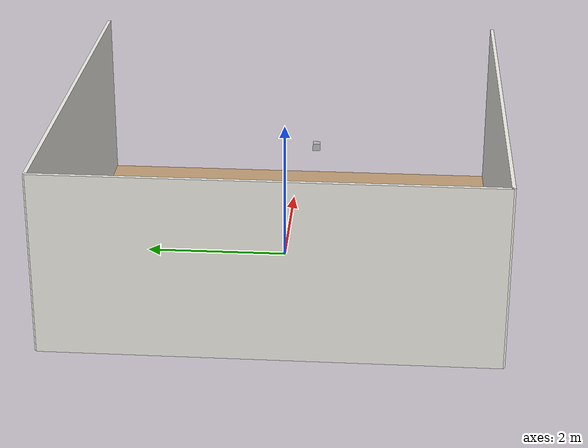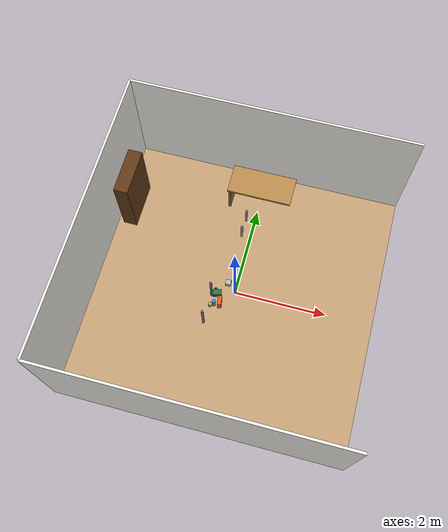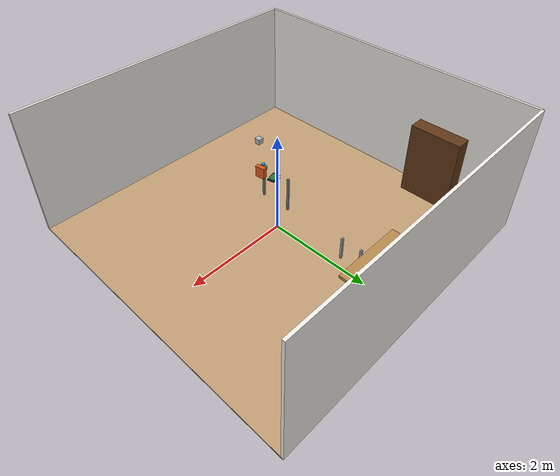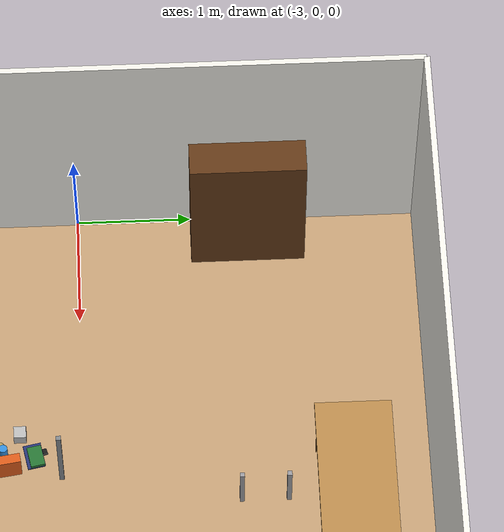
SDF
<sdf version="1.10">
 <world name="bps_room">
  <model name="floor">
   <static>true</static>
   <link name="link">
    <collision name="collision"><geometry><box><size>6 6 0.02</size></box></geometry></collision>
    <visual name="visual">
     <geometry><box><size>6 6 0.02</size></box></geometry>
     <material>
      <ambient>0.75999999 0.620000005 0.460000008 1</ambient>
      <diffuse>0.75999999 0.620000005 0.460000008 1</diffuse>
     </material>
    </visual>
    <inertial>
     <mass>1</mass>
     <inertia><ixx>1</ixx><ixy>0</ixy><ixz>0</ixz><iyy>1</iyy><iyz>0</iyz><izz>1</izz></inertia>
    </inertial>
   </link>
  </model>
  <model name="wall_north">
   <static>true</static>
   <pose>0 3 1.25 0 0 0</pose>
   <link name="link">
    <collision name="collision">
     <geometry><box><size>6 0.050000000000000003 2.5</size></box></geometry>
    </collision>
    <visual name="visual">
     <geometry><box><size>6 0.050000000000000003 2.5</size></box></geometry>
     <material>
      <ambient>0.949999988 0.939999998 0.910000026 1</ambient>
      <diffuse>0.949999988 0.939999998 0.910000026 1</diffuse>
     </material>
    </visual>
    <inertial>
     <mass>1</mass>
     <inertia><ixx>1</ixx><ixy>0</ixy><ixz>0</ixz><iyy>1</iyy><iyz>0</iyz><izz>1</izz></inertia>
    </inertial>
   </link>
  </model>
  <model name="wall_south">
   <static>true</static>
   <pose>0 -3 1.25 0 0 0</pose>
   <link name="link">
    <collision name="collision">
     <geometry><box><size>6 0.050000000000000003 2.5</size></box></geometry>
    </collision>
    <visual name="visual">
     <geometry><box><size>6 0.050000000000000003 2.5</size></box></geometry>
     <material>
      <ambient>0.949999988 0.939999998 0.910000026 1</ambient>
      <diffuse>0.949999988 0.939999998 0.910000026 1</diffuse>
     </material>
    </visual>
    <inertial>
     <mass>1</mass>
     <inertia><ixx>1</ixx><ixy>0</ixy><ixz>0</ixz><iyy>1</iyy><iyz>0</iyz><izz>1</izz></inertia>
    </inertial>
   </link>
  </model>
  <model name="wall_west">
   <static>true</static>
   <pose>-3 0 1.25 0 0 0</pose>
   <link name="link">
    <collision name="collision">
     <geometry><box><size>0.050000000000000003 6 2.5</size></box></geometry>
    </collision>
    <visual name="visual">
     <geometry><box><size>0.050000000000000003 6 2.5</size></box></geometry>
     <material>
      <ambient>0.930000007 0.920000017 0.889999986 1</ambient>
      <diffuse>0.930000007 0.920000017 0.889999986 1</diffuse>
     </material>
    </visual>
    <inertial>
     <mass>1</mass>
     <inertia><ixx>1</ixx><ixy>0</ixy><ixz>0</ixz><iyy>1</iyy><iyz>0</iyz><izz>1</izz></inertia>
    </inertial>
   </link>
  </model>
  <model name="bookshelf_body">
   <static>true</static>
   <pose>-2.7000000000000002 1.5 0.75 0 0 0</pose>
   <link name="link">
    <collision name="collision"><geometry><box><size>0.29999999999999999 1 1.5</size></box></geometry></collision>
    <visual name="visual">
     <geometry><box><size>0.29999999999999999 1 1.5</size></box></geometry>
     <material>
      <ambient>0.379999995 0.219999999 0.0900000036 1</ambient>
      <diffuse>0.379999995 0.219999999 0.0900000036 1</diffuse>
     </material>
    </visual>
    <inertial>
     <mass>1</mass>
     <inertia><ixx>1</ixx><ixy>0</ixy><ixz>0</ixz><iyy>1</iyy><iyz>0</iyz><izz>1</izz></inertia>
    </inertial>
   </link>
  </model>
  <model name="shelf_1">
   <static>true</static>
   <pose>-2.7000000000000002 1.5 0.40000000000000002 0 0 0</pose>
   <link name="link">
    <collision name="collision">
     <geometry><box><size>0.28000000000000003 0.94999999999999996 0.02</size></box></geometry>
    </collision>
    <visual name="visual">
     <geometry><box><size>0.28000000000000003 0.94999999999999996 0.02</size></box></geometry>
     <material>
      <ambient>0.5 0.319999993 0.140000001 1</ambient>
      <diffuse>0.5 0.319999993 0.140000001 1</diffuse>
     </material>
    </visual>
    <inertial>
     <mass>1</mass>
     <inertia><ixx>1</ixx><ixy>0</ixy><ixz>0</ixz><iyy>1</iyy><iyz>0</iyz><izz>1</izz></inertia>
    </inertial>
   </link>
  </model>
  <model name="shelf_2">
   <static>true</static>
   <pose>-2.7000000000000002 1.5 0.84999999999999998 0 0 0</pose>
   <link name="link">
    <collision name="collision">
     <geometry><box><size>0.28000000000000003 0.94999999999999996 0.02</size></box></geometry>
    </collision>
    <visual name="visual">
     <geometry><box><size>0.28000000000000003 0.94999999999999996 0.02</size></box></geometry>
     <material>
      <ambient>0.5 0.319999993 0.140000001 1</ambient>
      <diffuse>0.5 0.319999993 0.140000001 1</diffuse>
     </material>
    </visual>
    <inertial>
     <mass>1</mass>
     <inertia><ixx>1</ixx><ixy>0</ixy><ixz>0</ixz><iyy>1</iyy><iyz>0</iyz><izz>1</izz></inertia>
    </inertial>
   </link>
  </model>
  <model name="shelf_3">
   <static>true</static>
   <pose>-2.7000000000000002 1.5 1.25 0 0 0</pose>
   <link name="link">
    <collision name="collision">
     <geometry><box><size>0.28000000000000003 0.94999999999999996 0.02</size></box></geometry>
    </collision>
    <visual name="visual">
     <geometry><box><size>0.28000000000000003 0.94999999999999996 0.02</size></box></geometry>
     <material>
      <ambient>0.5 0.319999993 0.140000001 1</ambient>
      <diffuse>0.5 0.319999993 0.140000001 1</diffuse>
     </material>
    </visual>
    <inertial>
     <mass>1</mass>
     <inertia><ixx>1</ixx><ixy>0</ixy><ixz>0</ixz><iyy>1</iyy><iyz>0</iyz><izz>1</izz></inertia>
    </inertial>
   </link>
  </model>
  <model name="books_row1">
   <static>true</static>
   <pose>-2.6200000000000001 1.5 0.62 0 0 0</pose>
   <link name="link">
    <visual name="visual">
     <geometry><box><size>0.040000000000000001 0.80000000000000004 0.20000000000000001</size></box></geometry>
     <material>
      <ambient>0.779999971 0.180000007 0.180000007 1</ambient>
      <diffuse>0.779999971 0.180000007 0.180000007 1</diffuse>
     </material>
    </visual>
    <inertial>
     <mass>1</mass>
     <inertia><ixx>1</ixx><ixy>0</ixy><ixz>0</ixz><iyy>1</iyy><iyz>0</iyz><izz>1</izz></inertia>
    </inertial>
   </link>
  </model>
  <model name="books_row2">
   <static>true</static>
   <pose>-2.6200000000000001 1.5 1.0600000000000001 0 0 0</pose>
   <link name="link">
    <visual name="visual">
     <geometry><box><size>0.040000000000000001 0.69999999999999996 0.17999999999999999</size></box></geometry>
     <material>
      <ambient>0.180000007 0.319999993 0.720000029 1</ambient>
      <diffuse>0.180000007 0.319999993 0.720000029 1</diffuse>
     </material>
    </visual>
    <inertial>
     <mass>1</mass>
     <inertia><ixx>1</ixx><ixy>0</ixy><ixz>0</ixz><iyy>1</iyy><iyz>0</iyz><izz>1</izz></inertia>
    </inertial>
   </link>
  </model>
  <model name="desk">
   <static>true</static>
   <pose>0 2.2999999999999998 0.75 0 0 0</pose>
   <link name="link">
    <collision name="collision">
     <geometry><box><size>1.3999999999999999 0.65000000000000002 0.050000000000000003</size></box></geometry>
    </collision>
    <visual name="visual">
     <geometry><box><size>1.3999999999999999 0.65000000000000002 0.050000000000000003</size></box></geometry>
     <material>
      <ambient>0.720000029 0.540000021 0.300000012 1</ambient>
      <diffuse>0.720000029 0.540000021 0.300000012 1</diffuse>
     </material>
    </visual>
    <inertial>
     <mass>1</mass>
     <inertia><ixx>1</ixx><ixy>0</ixy><ixz>0</ixz><iyy>1</iyy><iyz>0</iyz><izz>1</izz></inertia>
    </inertial>
   </link>
  </model>
  <model name="desk_leg_left">
   <static>true</static>
   <pose>-0.65000000000000002 2.2999999999999998 0.375 0 0 0</pose>
   <link name="link">
    <collision name="collision">
     <geometry><box><size>0.050000000000000003 0.59999999999999998 0.75</size></box></geometry>
    </collision>
    <visual name="visual">
     <geometry><box><size>0.050000000000000003 0.59999999999999998 0.75</size></box></geometry>
     <material>
      <ambient>0.550000012 0.379999995 0.180000007 1</ambient>
      <diffuse>0.550000012 0.379999995 0.180000007 1</diffuse>
     </material>
    </visual>
    <inertial>
     <mass>1</mass>
     <inertia><ixx>1</ixx><ixy>0</ixy><ixz>0</ixz><iyy>1</iyy><iyz>0</iyz><izz>1</izz></inertia>
    </inertial>
   </link>
  </model>
  <model name="chair_leg_fl">
   <static>true</static>
   <pose>-0.20000000000000001 1.3500000000000001 0.23999999999999999 0 0 0</pose>
   <link name="link">
    <collision name="collision">
     <geometry><box><size>0.040000000000000001 0.040000000000000001 0.47999999999999998</size></box></geometry>
    </collision>
    <visual name="visual">
     <geometry><box><size>0.040000000000000001 0.040000000000000001 0.47999999999999998</size></box></geometry>
     <material>
      <ambient>0.600000024 0.600000024 0.620000005 1</ambient>
      <diffuse>0.600000024 0.600000024 0.620000005 1</diffuse>
     </material>
    </visual>
    <inertial>
     <mass>1</mass>
     <inertia><ixx>1</ixx><ixy>0</ixy><ixz>0</ixz><iyy>1</iyy><iyz>0</iyz><izz>1</izz></inertia>
    </inertial>
   </link>
  </model>
  <model name="chair_leg_bl">
   <static>true</static>
   <pose>-0.20000000000000001 1.75 0.23999999999999999 0 0 0</pose>
   <link name="link">
    <collision name="collision">
     <geometry><box><size>0.040000000000000001 0.040000000000000001 0.47999999999999998</size></box></geometry>
    </collision>
    <visual name="visual">
     <geometry><box><size>0.040000000000000001 0.040000000000000001 0.47999999999999998</size></box></geometry>
     <material>
      <ambient>0.600000024 0.600000024 0.620000005 1</ambient>
      <diffuse>0.600000024 0.600000024 0.620000005 1</diffuse>
     </material>
    </visual>
    <inertial>
     <mass>1</mass>
     <inertia><ixx>1</ixx><ixy>0</ixy><ixz>0</ixz><iyy>1</iyy><iyz>0</iyz><izz>1</izz></inertia>
    </inertial>
   </link>
  </model>
  <model name="table_leg_fl">
   <static>true</static>
   <pose>-0.46999999999999997 -0.81999999999999995 0.375 0 0 0</pose>
   <link name="link">
    <collision name="collision">
     <geometry><box><size>0.040000000000000001 0.040000000000000001 0.75</size></box></geometry>
    </collision>
    <visual name="visual">
     <geometry><box><size>0.040000000000000001 0.040000000000000001 0.75</size></box></geometry>
     <material>
      <ambient>0.5 0.519999981 0.540000021 1</ambient>
      <diffuse>0.5 0.519999981 0.540000021 1</diffuse>
     </material>
    </visual>
    <inertial>
     <mass>1</mass>
     <inertia><ixx>1</ixx><ixy>0</ixy><ixz>0</ixz><iyy>1</iyy><iyz>0</iyz><izz>1</izz></inertia>
    </inertial>
   </link>
  </model>
  <model name="table_leg_bl">
   <static>true</static>
   <pose>-0.46999999999999997 -0.17999999999999999 0.375 0 0 0</pose>
   <link name="link">
    <collision name="collision">
     <geometry><box><size>0.040000000000000001 0.040000000000000001 0.75</size></box></geometry>
    </collision>
    <visual name="visual">
     <geometry><box><size>0.040000000000000001 0.040000000000000001 0.75</size></box></geometry>
     <material>
      <ambient>0.5 0.519999981 0.540000021 1</ambient>
      <diffuse>0.5 0.519999981 0.540000021 1</diffuse>
     </material>
    </visual>
    <inertial>
     <mass>1</mass>
     <inertia><ixx>1</ixx><ixy>0</ixy><ixz>0</ixz><iyy>1</iyy><iyz>0</iyz><izz>1</izz></inertia>
    </inertial>
   </link>
  </model>
  <model name="obj_cereal_box">
   <static>true</static>
   <pose>-0.16259999999999999 -0.58120000000000005 0.88500000000000001 0 0 0.14999999999999988</pose>
   <link name="link">
    <collision name="collision">
     <geometry><box><size>0.080000000000000002 0.19 0.23000000000000001</size></box></geometry>
    </collision>
    <visual name="visual">
     <geometry><box><size>0.080000000000000002 0.19 0.23000000000000001</size></box></geometry>
     <material>
      <ambient>0.850000024 0.349999994 0.100000001 1</ambient>
      <diffuse>0.850000024 0.349999994 0.100000001 1</diffuse>
      <specular>0.200000003 0.200000003 0.200000003 1</specular>
     </material>
     <plugin name="gz::sim::systems::Label" filename="gz-sim-label-system"><label>1</label></plugin>
    </visual>
    <inertial>
     <mass>1</mass>
     <inertia><ixx>1</ixx><ixy>0</ixy><ixz>0</ixz><iyy>1</iyy><iyz>0</iyz><izz>1</izz></inertia>
    </inertial>
   </link>
  </model>
  <model name="obj_bottle">
   <static>true</static>
   <pose>-0.26769999999999999 -0.628 0.88 0 0 0</pose>
   <link name="link">
    <collision name="collision">
     <geometry><cylinder><radius>0.035000000000000003</radius><length>0.22</length></cylinder></geometry>
    </collision>
    <visual name="visual">
     <geometry><cylinder><radius>0.035000000000000003</radius><length>0.22</length></cylinder></geometry>
     <material>
      <ambient>0.200000003 0.550000012 0.850000024 1</ambient>
      <diffuse>0.200000003 0.550000012 0.850000024 1</diffuse>
      <specular>0.600000024 0.600000024 0.600000024 1</specular>
     </material>
     <plugin name="gz::sim::systems::Label" filename="gz-sim-label-system"><label>2</label></plugin>
    </visual>
    <inertial>
     <mass>1</mass>
     <inertia><ixx>1</ixx><ixy>0</ixy><ixz>0</ixz><iyy>1</iyy><iyz>0</iyz><izz>1</izz></inertia>
    </inertial>
   </link>
  </model>
  <model name="obj_jar">
   <static>true</static>
   <pose>-0.3407 -0.66039999999999999 0.82499999999999996 0 0 0</pose>
   <link name="link">
    <collision name="collision">
     <geometry><cylinder><radius>0.040000000000000001</radius><length>0.11</length></cylinder></geometry>
    </collision>
    <visual name="visual">
     <geometry><cylinder><radius>0.040000000000000001</radius><length>0.11</length></cylinder></geometry>
     <material>
      <ambient>0.699999988 0.600000024 0.349999994 1</ambient>
      <diffuse>0.699999988 0.600000024 0.349999994 1</diffuse>
      <specular>0.5 0.5 0.5 1</specular>
     </material>
     <plugin name="gz::sim::systems::Label" filename="gz-sim-label-system"><label>3</label></plugin>
    </visual>
    <inertial>
     <mass>1</mass>
     <inertia><ixx>1</ixx><ixy>0</ixy><ixz>0</ixz><iyy>1</iyy><iyz>0</iyz><izz>1</izz></inertia>
    </inertial>
   </link>
  </model>
  <model name="obj_remote">
   <static>true</static>
   <pose>-0.31 -0.34999999999999998 0.78000000000000003 0 0 0.30000000000000021</pose>
   <link name="link">
    <collision name="collision">
     <geometry><box><size>0.050000000000000003 0.16 0.02</size></box></geometry>
    </collision>
    <visual name="visual">
     <geometry><box><size>0.050000000000000003 0.16 0.02</size></box></geometry>
     <material>
      <ambient>0.100000001 0.100000001 0.100000001 1</ambient>
      <diffuse>0.100000001 0.100000001 0.100000001 1</diffuse>
      <specular>0.300000012 0.300000012 0.300000012 1</specular>
     </material>
     <plugin name="gz::sim::systems::Label" filename="gz-sim-label-system"><label>9</label></plugin>
    </visual>
    <inertial>
     <mass>1</mass>
     <inertia><ixx>1</ixx><ixy>0</ixy><ixz>0</ixz><iyy>1</iyy><iyz>0</iyz><izz>1</izz></inertia>
    </inertial>
   </link>
  </model>
  <model name="obj_notebook">
   <static>true</static>
   <pose>-0.28999999999999998 -0.38 0.78300000000000003 1.7417728959190634e-18 0.090000000000000038 0.19999999999999998</pose>
   <link name="link">
    <collision name="collision">
     <geometry><box><size>0.20999999999999999 0.14999999999999999 0.014999999999999999</size></box></geometry>
    </collision>
    <visual name="visual">
     <geometry><box><size>0.20999999999999999 0.14999999999999999 0.014999999999999999</size></box></geometry>
     <material>
      <ambient>0.150000006 0.200000003 0.449999988 1</ambient>
      <diffuse>0.150000006 0.200000003 0.449999988 1</diffuse>
     </material>
     <plugin name="gz::sim::systems::Label" filename="gz-sim-label-system"><label>10</label></plugin>
    </visual>
    <inertial>
     <mass>1</mass>
     <inertia><ixx>1</ixx><ixy>0</ixy><ixz>0</ixz><iyy>1</iyy><iyz>0</iyz><izz>1</izz></inertia>
    </inertial>
   </link>
  </model>
  <model name="obj_book">
   <static>true</static>
   <pose>-0.27500000000000002 -0.36499999999999999 0.80500000000000005 0 0 0.20000000000000009</pose>
   <link name="link">
    <collision name="collision">
     <geometry><box><size>0.17999999999999999 0.12 0.029999999999999999</size></box></geometry>
    </collision>
    <visual name="visual">
     <geometry><box><size>0.17999999999999999 0.12 0.029999999999999999</size></box></geometry>
     <material>
      <ambient>0.150000006 0.449999988 0.200000003 1</ambient>
      <diffuse>0.150000006 0.449999988 0.200000003 1</diffuse>
     </material>
     <plugin name="gz::sim::systems::Label" filename="gz-sim-label-system"><label>11</label></plugin>
    </visual>
    <inertial>
     <mass>1</mass>
     <inertia><ixx>1</ixx><ixy>0</ixy><ixz>0</ixz><iyy>1</iyy><iyz>0</iyz><izz>1</izz></inertia>
    </inertial>
   </link>
  </model>
  <model name="depth_camera">
   <static>true</static>
   <pose>-0.060530148446559906 -0.5 1.7741203308105469 3.1415899979989477 1.57079000476762 3.1415899979989477</pose>
   <link name="link">
    <pose>0.050000000000000003 0.050000000000000003 0.050000000000000003 0 0 0</pose>
    <inertial>
     <mass>0.10000000000000001</mass>
     <inertia>
      <ixx>0.00016666700000000001</ixx>
      <iyy>0.00016666700000000001</iyy>
      <izz>0.00016666700000000001</izz>
      <ixy>0</ixy>
      <ixz>0</ixz>
      <iyz>0</iyz>
     </inertia>
    </inertial>
    <collision name="collision">
     <geometry><box><size>0.10000000000000001 0.10000000000000001 0.10000000000000001</size></box></geometry>
    </collision>
    <visual name="visual">
     <geometry><box><size>0.10000000000000001 0.10000000000000001 0.10000000000000001</size></box></geometry>
    </visual>
    <sensor name="depth_camera1" type="depth_camera">
     <topic>depth_camera</topic>
     <update_rate>10</update_rate>
     <enable_metrics>false</enable_metrics>
     <camera>
      <horizontal_fov>1.2</horizontal_fov>
      <image>
       <width>640</width>
       <height>480</height>
       <format>R_FLOAT32</format>
       <anti_aliasing>4</anti_aliasing>
      </image>
      <camera_info_topic>__default__</camera_info_topic>
      <triggered>false</triggered>
      <clip><near>0.10000000000000001</near><far>2</far></clip>
      <save enabled="false"><path>__default__</path></save>
      <visibility_mask>4294967295</visibility_mask>
      <noise><type>none</type><mean>0</mean><stddev>0</stddev></noise>
      <distortion><k1>0</k1><k2>0</k2><k3>0</k3><p1>0</p1><p2>0</p2><center>0.5 0.5</center></distortion>
      <lens>
       <type>stereographic</type>
       <scale_to_hfov>true</scale_to_hfov>
       <cutoff_angle>1.5707963267948966</cutoff_angle>
       <env_texture_size>256</env_texture_size>
      </lens>
     </camera>
    </sensor>
    <sensor name="rgb_camera" type="camera">
     <topic>rgb_camera</topic>
     <update_rate>10</update_rate>
     <enable_metrics>false</enable_metrics>
     <camera>
      <horizontal_fov>1.2</horizontal_fov>
      <image><width>640</width><height>480</height><format>RGB_INT8</format><anti_aliasing>4</anti_aliasing></image>
      <camera_info_topic>__default__</camera_info_topic>
      <triggered>false</triggered>
      <clip><near>0.10000000000000001</near><far>2</far></clip>
      <save enabled="false"><path>__default__</path></save>
      <visibility_mask>4294967295</visibility_mask>
      <noise><type>none</type><mean>0</mean><stddev>0</stddev></noise>
      <distortion><k1>0</k1><k2>0</k2><k3>0</k3><p1>0</p1><p2>0</p2><center>0.5 0.5</center></distortion>
      <lens>
       <type>stereographic</type>
       <scale_to_hfov>true</scale_to_hfov>
       <cutoff_angle>1.5707963267948966</cutoff_angle>
       <env_texture_size>256</env_texture_size>
      </lens>
     </camera>
    </sensor>
    <sensor name="semantic_camera" type="segmentation_camera">
     <topic>semantic_camera</topic>
     <update_rate>10</update_rate>
     <enable_metrics>false</enable_metrics>
     <camera>
      <horizontal_fov>1.2</horizontal_fov>
      <image><width>640</width><height>480</height></image>
      <clip><near>0.1</near><far>100</far></clip>
      <segmentation_type>semantic</segmentation_type>
     </camera>
    </sensor>
   </link>
  </model>
 </world>
</sdf>
